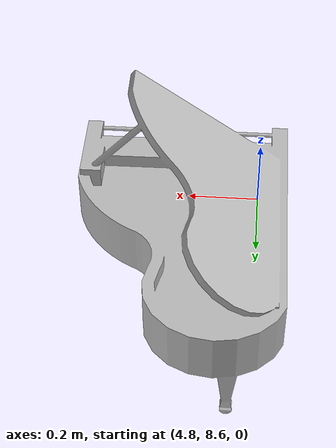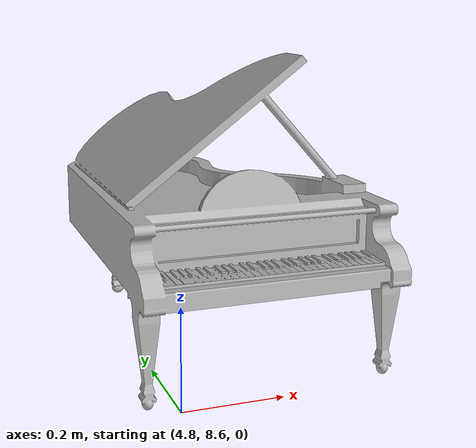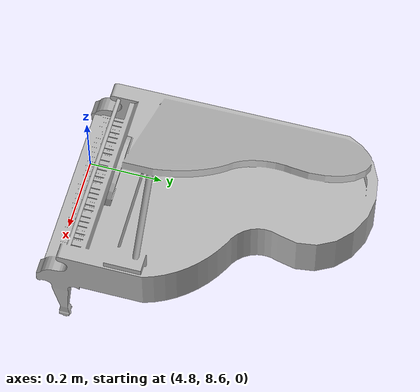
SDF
<?xml version="1.0" ?>
<sdf version="1.6">
  <model name="piano2">
    <static>true</static>
    <link name="link">
      <collision name="collision">
        <geometry>
          <mesh>
            <uri>model://piano2/meshes/piano.dae</uri>
          </mesh>
        </geometry>
      </collision>
      <visual name="visual">
        <geometry>
          <mesh>
            <uri>model://piano2/meshes/piano.dae</uri>
          </mesh>
        </geometry>
      </visual>
    </link>
    <pose frame=''>5 9 .3 0 -0 0</pose>
  </model>
</sdf>
